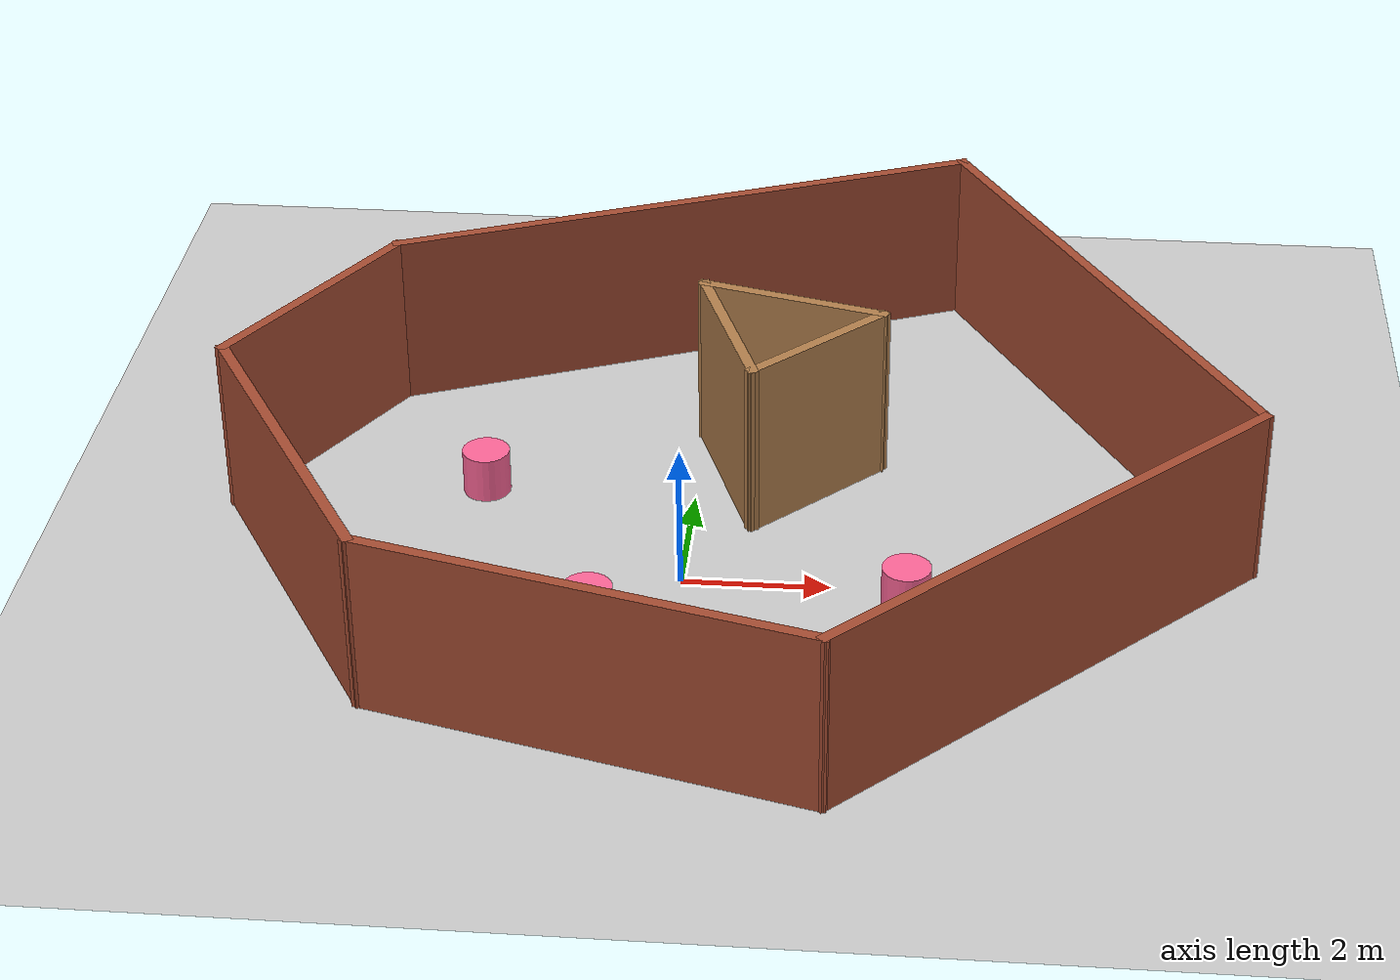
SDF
<sdf version="1.6">
 <world name="default">
  <light name="sun" type="directional">
   <pose>0 0 10 0 -0 0</pose>
   <diffuse>0.8 0.8 0.8 1</diffuse>
   <specular>0.2 0.2 0.2 1</specular>
   <attenuation>
    <range>1000</range>
    <constant>0.9</constant>
    <linear>0.01</linear>
    <quadratic>0.001</quadratic>
   </attenuation>
   <direction>-0.5 0.1 -0.9</direction>
  </light>
  <model name="ground_plane">
   <static>1</static>
   <link name="link">
    <collision name="collision">
     <geometry><plane><normal>0 0 1</normal><size>100 100</size></plane></geometry>
     <surface>
      <contact><collide_bitmask>65535</collide_bitmask></contact>
      <friction><ode><mu>100</mu><mu2>50</mu2></ode></friction>
     </surface>
    </collision>
    <visual name="visual">
     <cast_shadows>0</cast_shadows>
     <geometry><plane><normal>0 0 1</normal><size>100 100</size></plane></geometry>
     <material>
      <script><uri>file://media/materials/scripts/gazebo.material</uri><name>Gazebo/Grey</name></script>
     </material>
    </visual>
   </link>
  </model>
  <gravity>0 0 -9.8</gravity>
  <magnetic_field>6e-06 2.3e-05 -4.2e-05</magnetic_field>
  <atmosphere type="adiabatic"/>
  <physics name="default_physics" default="0" type="ode">
   <max_step_size>0.001</max_step_size>
   <real_time_factor>1</real_time_factor>
   <real_time_update_rate>1000</real_time_update_rate>
  </physics>
  <scene><ambient>0.4 0.4 0.4 1</ambient><background>0.7 0.7 0.7 1</background><shadows>1</shadows></scene>
  <audio><device>default</device></audio>
  <spherical_coordinates>
   <surface_model>EARTH_WGS84</surface_model>
   <latitude_deg>0</latitude_deg>
   <longitude_deg>0</longitude_deg>
   <elevation>0</elevation>
   <heading_deg>0</heading_deg>
  </spherical_coordinates>
  <model name="thymio_environment_0">
   <pose>0.62861 1.5671 0 0 -0 0</pose>
   <link name="Wall_12">
    <collision name="Wall_12_Collision">
     <geometry><box><size>3.75 0.15 2.5</size></box></geometry>
     <pose>0 0 1.25 0 -0 0</pose>
    </collision>
    <visual name="Wall_12_Visual">
     <pose>0 0 1.25 0 -0 0</pose>
     <geometry><box><size>3.75 0.15 2.5</size></box></geometry>
     <material>
      <script><uri>file://media/materials/scripts/gazebo.material</uri><name>Gazebo/Bricks</name></script>
      <ambient>1 1 1 1</ambient>
     </material>
     <meta><layer>0</layer></meta>
    </visual>
    <pose>-6.00989 1.36177 0 0 -0 -2.0944</pose>
   </link>
   <link name="Wall_13">
    <collision name="Wall_13_Collision">
     <geometry><box><size>5.25 0.15 2.5</size></box></geometry>
     <pose>0 0 1.25 0 -0 0</pose>
    </collision>
    <visual name="Wall_13_Visual">
     <pose>0 0 1.25 0 -0 0</pose>
     <geometry><box><size>5.25 0.15 2.5</size></box></geometry>
     <material>
      <script><uri>file://media/materials/scripts/gazebo.material</uri><name>Gazebo/Bricks</name></script>
      <ambient>1 1 1 1</ambient>
     </material>
     <meta><layer>0</layer></meta>
    </visual>
    <pose>-5.63489 -2.40544 0 0 -0 -1.0472</pose>
   </link>
   <link name="Wall_14">
    <collision name="Wall_14_Collision">
     <geometry><box><size>6.25 0.15 2.5</size></box></geometry>
     <pose>0 0 1.25 0 -0 0</pose>
    </collision>
    <visual name="Wall_14_Visual">
     <pose>0 0 1.25 0 -0 0</pose>
     <geometry><box><size>6.25 0.15 2.5</size></box></geometry>
     <material>
      <script><uri>file://media/materials/scripts/gazebo.material</uri><name>Gazebo/Bricks</name></script>
      <ambient>1 1 1 1</ambient>
     </material>
     <meta><layer>0</layer></meta>
    </visual>
    <pose>-1.41381 -5.4032 0 0 -0 -0.261799</pose>
   </link>
   <link name="Wall_15">
    <collision name="Wall_15_Collision">
     <geometry><box><size>7.75 0.15 2.5</size></box></geometry>
     <pose>0 0 1.25 0 -0 0</pose>
    </collision>
    <visual name="Wall_15_Visual">
     <pose>0 0 1.25 0 -0 0</pose>
     <geometry><box><size>7.75 0.15 2.5</size></box></geometry>
     <material>
      <script><uri>file://media/materials/scripts/gazebo.material</uri><name>Gazebo/Bricks</name></script>
      <ambient>1 1 1 1</ambient>
     </material>
     <meta><layer>0</layer></meta>
    </visual>
    <pose>4.21927 -3.5056 0 0 -0 0.785398</pose>
   </link>
   <link name="Wall_16">
    <collision name="Wall_16_Collision">
     <geometry><box><size>8.25 0.15 2.5</size></box></geometry>
     <pose>0 0 1.25 0 -0 0</pose>
    </collision>
    <visual name="Wall_16_Visual">
     <pose>0 0 1.25 0 -0 0</pose>
     <geometry><box><size>8.25 0.15 2.5</size></box></geometry>
     <material>
      <script><uri>file://media/materials/scripts/gazebo.material</uri><name>Gazebo/Bricks</name></script>
      <ambient>1 1 1 1</ambient>
     </material>
     <meta><layer>0</layer></meta>
    </visual>
    <pose>4.88127 2.68881 0 0 -0 2.0944</pose>
   </link>
   <link name="Wall_17">
    <collision name="Wall_17_Collision">
     <geometry><box><size>8.76332 0.15 2.5</size></box></geometry>
     <pose>0 0 1.25 0 -0 0</pose>
    </collision>
    <visual name="Wall_17_Visual">
     <pose>0 0 1.25 0 -0 0</pose>
     <geometry><box><size>8.76332 0.15 2.5</size></box></geometry>
     <material>
      <script><uri>file://media/materials/scripts/gazebo.material</uri><name>Gazebo/Bricks</name></script>
      <ambient>1 1 1 1</ambient>
     </material>
     <meta><layer>0</layer></meta>
    </visual>
    <pose>-1.12681 4.55842 0 0 -0 -2.75148</pose>
   </link>
   <link name="Wall_19">
    <collision name="Wall_19_Collision">
     <geometry><box><size>2.75 0.15 2.5</size></box></geometry>
     <pose>0 0 1.25 0 -0 0</pose>
    </collision>
    <visual name="Wall_19_Visual">
     <pose>0 0 1.25 0 -0 0</pose>
     <geometry><box><size>2.75 0.15 2.5</size></box></geometry>
     <material>
      <script><uri>file://media/materials/scripts/gazebo.material</uri><name>Gazebo/Wood</name></script>
      <ambient>1 1 1 1</ambient>
     </material>
     <meta><layer>0</layer></meta>
    </visual>
    <pose>0.613394 1.79081 0 0 -0 -0.261799</pose>
   </link>
   <link name="Wall_20">
    <collision name="Wall_20_Collision">
     <geometry><box><size>2.5 0.15 2.5</size></box></geometry>
     <pose>0 0 1.25 0 -0 0</pose>
    </collision>
    <visual name="Wall_20_Visual">
     <pose>0 0 1.25 0 -0 0</pose>
     <geometry><box><size>2.5 0.15 2.5</size></box></geometry>
     <material>
      <script><uri>file://media/materials/scripts/gazebo.material</uri><name>Gazebo/Wood</name></script>
      <ambient>1 1 1 1</ambient>
     </material>
     <meta><layer>0</layer></meta>
    </visual>
    <pose>1.03825 0.623491 0 0 -0 -2.35619</pose>
   </link>
   <link name="Wall_21">
    <collision name="Wall_21_Collision">
     <geometry><box><size>2.63445 0.15 2.5</size></box></geometry>
     <pose>0 0 1.25 0 -0 0</pose>
    </collision>
    <visual name="Wall_21_Visual">
     <pose>0 0 1.25 0 -0 0</pose>
     <geometry><box><size>2.63445 0.15 2.5</size></box></geometry>
     <material>
      <script><uri>file://media/materials/scripts/gazebo.material</uri><name>Gazebo/Wood</name></script>
      <ambient>1 1 1 1</ambient>
     </material>
     <meta><layer>0</layer></meta>
    </visual>
    <pose>-0.217456 0.959956 0 0 -0 1.91985</pose>
   </link>
   <static>1</static>
  </model>
  <model name="cilinder_obstacle">
   <link name="link_6">
    <inertial>
     <mass>0.268073</mass>
     <inertia>
      <ixx>0.0160444</ixx>
      <ixy>0</ixy>
      <ixz>0</ixz>
      <iyy>0.0160444</iyy>
      <iyz>0</iyz>
      <izz>0.0141946</izz>
     </inertia>
    </inertial>
    <pose>2.29761 0.283138 0.5 0 -0 0</pose>
    <visual name="visual">
     <geometry><cylinder><radius>0.325425</radius><length>0.632856</length></cylinder></geometry>
     <material>
      <lighting>1</lighting>
      <script><uri>file://media/materials/scripts/gazebo.material</uri><name>Gazebo/Grey</name></script>
      <ambient>1 0.4 0.6 1</ambient>
      <shader type="vertex"><normal_map>__default__</normal_map></shader>
      <diffuse>0.7 0.7 0.7 1</diffuse>
      <specular>0.01 0.01 0.01 1</specular>
      <emissive>0 0 0 1</emissive>
     </material>
    </visual>
    <collision name="collision">
     <geometry><cylinder><radius>0.325425</radius><length>0.632856</length></cylinder></geometry>
     <surface>
      <friction>
       <ode><mu>1</mu><mu2>1</mu2><fdir1>0 0 0</fdir1><slip1>0</slip1><slip2>0</slip2></ode>
       <torsional>
        <coefficient>1</coefficient>
        <patch_radius>0</patch_radius>
        <surface_radius>0</surface_radius>
        <use_patch_radius>1</use_patch_radius>
        <ode><slip>0</slip></ode>
       </torsional>
      </friction>
      <bounce><restitution_coefficient>0</restitution_coefficient><threshold>1e+06</threshold></bounce>
      <contact>
       <collide_without_contact>0</collide_without_contact>
       <collide_without_contact_bitmask>1</collide_without_contact_bitmask>
       <collide_bitmask>1</collide_bitmask>
       <ode>
        <soft_cfm>0</soft_cfm>
        <soft_erp>0.2</soft_erp>
        <kp>1e+13</kp>
        <kd>1</kd>
        <max_vel>0.01</max_vel>
        <min_depth>0</min_depth>
       </ode>
       <bullet>
        <split_impulse>1</split_impulse>
        <split_impulse_penetration_threshold>-0.01</split_impulse_penetration_threshold>
        <soft_cfm>0</soft_cfm>
        <soft_erp>0.2</soft_erp>
        <kp>1e+13</kp>
        <kd>1</kd>
       </bullet>
      </contact>
     </surface>
    </collision>
   </link>
   <static>0</static>
   <pose>-3.34944 -1.68404 0 0 -0 0</pose>
  </model>
  <model name="cilinder_obstacle_0">
   <link name="link_6">
    <inertial>
     <mass>0.268073</mass>
     <inertia>
      <ixx>0.0160444</ixx>
      <ixy>0</ixy>
      <ixz>0</ixz>
      <iyy>0.0160444</iyy>
      <iyz>0</iyz>
      <izz>0.0141946</izz>
     </inertia>
    </inertial>
    <pose>2.29761 0.283138 0.5 0 -0 0</pose>
    <visual name="visual">
     <geometry><cylinder><radius>0.325425</radius><length>0.632856</length></cylinder></geometry>
     <material>
      <lighting>1</lighting>
      <script><uri>file://media/materials/scripts/gazebo.material</uri><name>Gazebo/Grey</name></script>
      <ambient>1 0.4 0.6 1</ambient>
      <shader type="vertex"><normal_map>__default__</normal_map></shader>
      <diffuse>0.7 0.7 0.7 1</diffuse>
      <specular>0.01 0.01 0.01 1</specular>
      <emissive>0 0 0 1</emissive>
     </material>
    </visual>
    <collision name="collision">
     <geometry><cylinder><radius>0.325425</radius><length>0.632856</length></cylinder></geometry>
     <surface>
      <friction>
       <ode><mu>1</mu><mu2>1</mu2><fdir1>0 0 0</fdir1><slip1>0</slip1><slip2>0</slip2></ode>
       <torsional>
        <coefficient>1</coefficient>
        <patch_radius>0</patch_radius>
        <surface_radius>0</surface_radius>
        <use_patch_radius>1</use_patch_radius>
        <ode><slip>0</slip></ode>
       </torsional>
      </friction>
      <bounce><restitution_coefficient>0</restitution_coefficient><threshold>1e+06</threshold></bounce>
      <contact>
       <collide_without_contact>0</collide_without_contact>
       <collide_without_contact_bitmask>1</collide_without_contact_bitmask>
       <collide_bitmask>1</collide_bitmask>
       <ode>
        <soft_cfm>0</soft_cfm>
        <soft_erp>0.2</soft_erp>
        <kp>1e+13</kp>
        <kd>1</kd>
        <max_vel>0.01</max_vel>
        <min_depth>0</min_depth>
       </ode>
       <bullet>
        <split_impulse>1</split_impulse>
        <split_impulse_penetration_threshold>-0.01</split_impulse_penetration_threshold>
        <soft_cfm>0</soft_cfm>
        <soft_erp>0.2</soft_erp>
        <kp>1e+13</kp>
        <kd>1</kd>
       </bullet>
      </contact>
     </surface>
    </collision>
   </link>
   <static>0</static>
   <pose>-5.15388 1.46942 0 0 -0 0</pose>
  </model>
  <model name="cilinder_obstacle_1">
   <link name="link_6">
    <inertial>
     <mass>0.268073</mass>
     <inertia>
      <ixx>0.0160444</ixx>
      <ixy>0</ixy>
      <ixz>0</ixz>
      <iyy>0.0160444</iyy>
      <iyz>0</iyz>
      <izz>0.0141946</izz>
     </inertia>
    </inertial>
    <pose>2.29761 0.283138 0.5 0 -0 0</pose>
    <visual name="visual">
     <geometry><cylinder><radius>0.325425</radius><length>0.632856</length></cylinder></geometry>
     <material>
      <lighting>1</lighting>
      <script><uri>file://media/materials/scripts/gazebo.material</uri><name>Gazebo/Grey</name></script>
      <ambient>1 0.4 0.6 1</ambient>
      <shader type="vertex"><normal_map>__default__</normal_map></shader>
      <diffuse>0.7 0.7 0.7 1</diffuse>
      <specular>0.01 0.01 0.01 1</specular>
      <emissive>0 0 0 1</emissive>
     </material>
    </visual>
    <collision name="collision">
     <geometry><cylinder><radius>0.325425</radius><length>0.632856</length></cylinder></geometry>
     <surface>
      <friction>
       <ode><mu>1</mu><mu2>1</mu2><fdir1>0 0 0</fdir1><slip1>0</slip1><slip2>0</slip2></ode>
       <torsional>
        <coefficient>1</coefficient>
        <patch_radius>0</patch_radius>
        <surface_radius>0</surface_radius>
        <use_patch_radius>1</use_patch_radius>
        <ode><slip>0</slip></ode>
       </torsional>
      </friction>
      <bounce><restitution_coefficient>0</restitution_coefficient><threshold>1e+06</threshold></bounce>
      <contact>
       <collide_without_contact>0</collide_without_contact>
       <collide_without_contact_bitmask>1</collide_without_contact_bitmask>
       <collide_bitmask>1</collide_bitmask>
       <ode>
        <soft_cfm>0</soft_cfm>
        <soft_erp>0.2</soft_erp>
        <kp>1e+13</kp>
        <kd>1</kd>
        <max_vel>0.01</max_vel>
        <min_depth>0</min_depth>
       </ode>
       <bullet>
        <split_impulse>1</split_impulse>
        <split_impulse_penetration_threshold>-0.01</split_impulse_penetration_threshold>
        <soft_cfm>0</soft_cfm>
        <soft_erp>0.2</soft_erp>
        <kp>1e+13</kp>
        <kd>1</kd>
       </bullet>
      </contact>
     </surface>
    </collision>
   </link>
   <static>0</static>
   <pose>0.708253 -0.912721 0 0 -0 0</pose>
  </model>
 </world>
</sdf>
